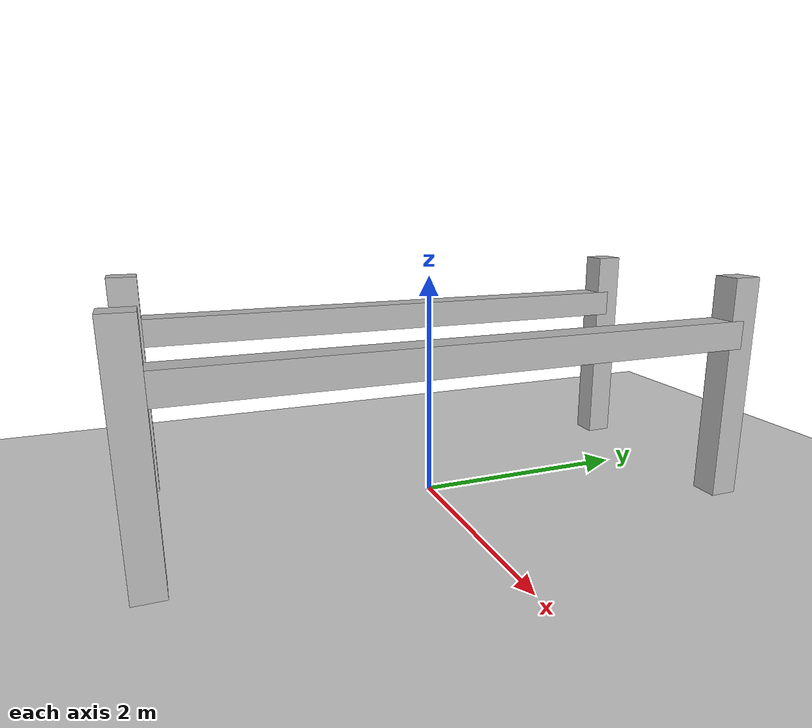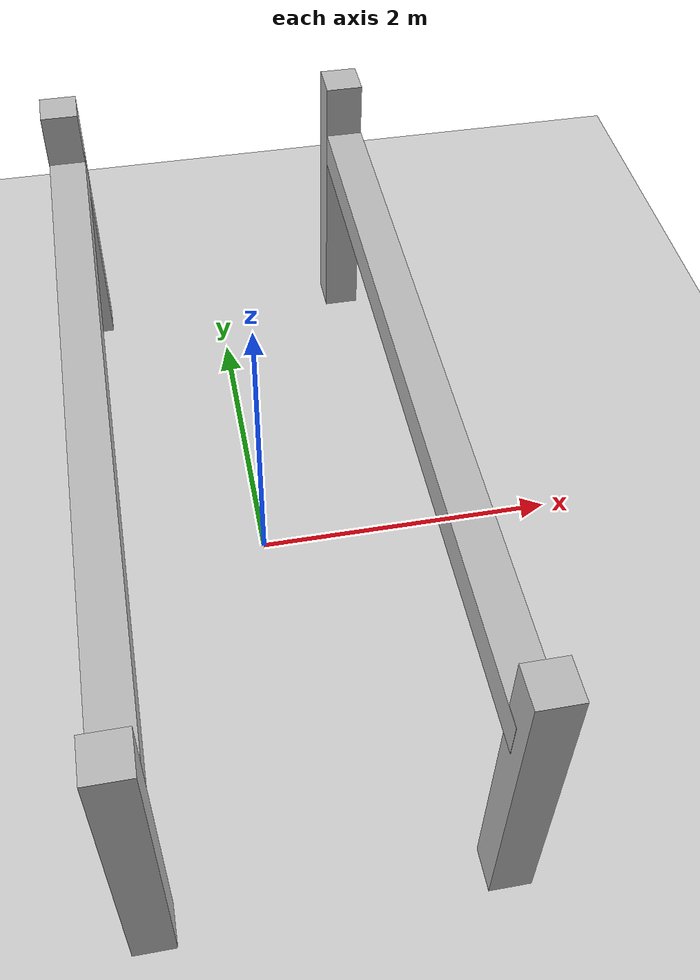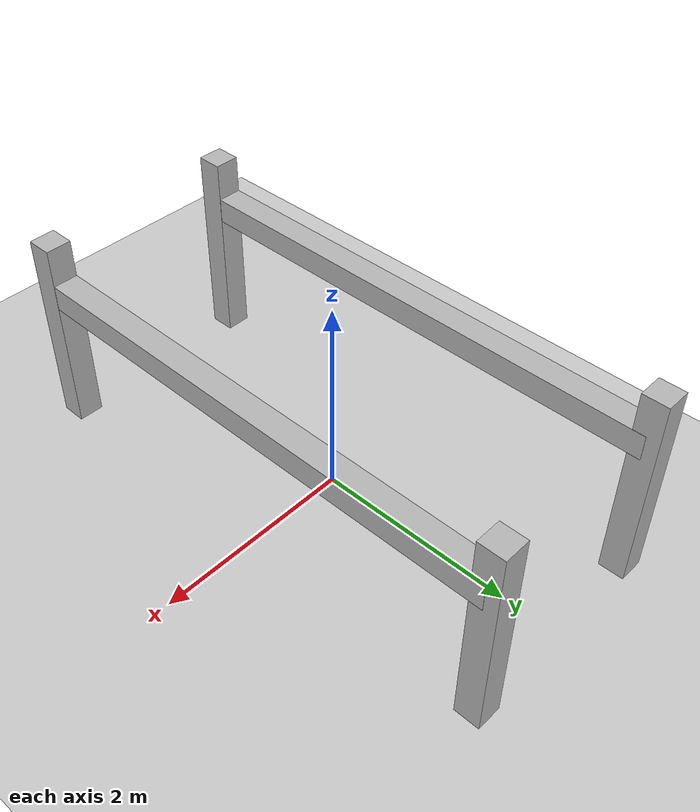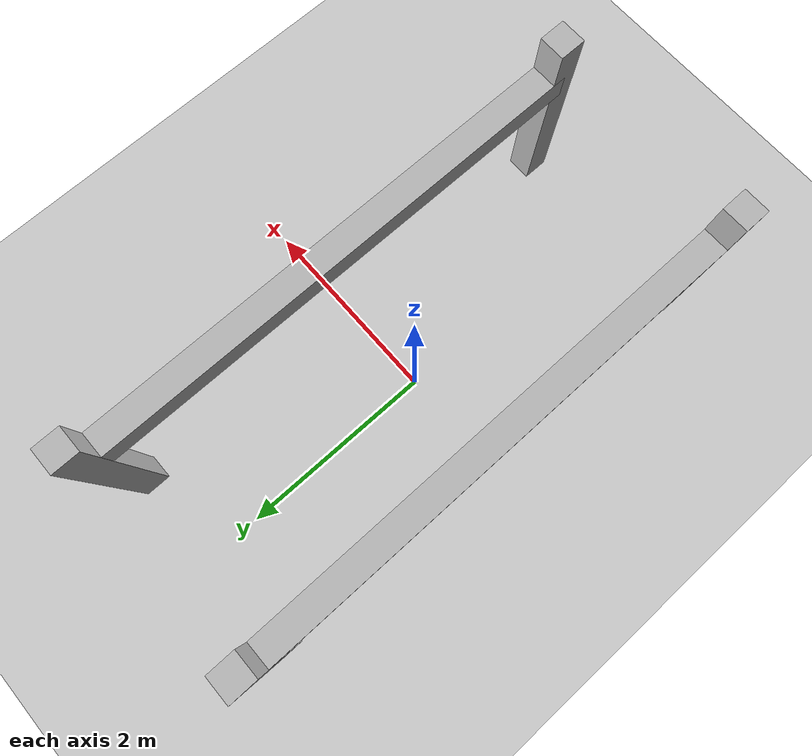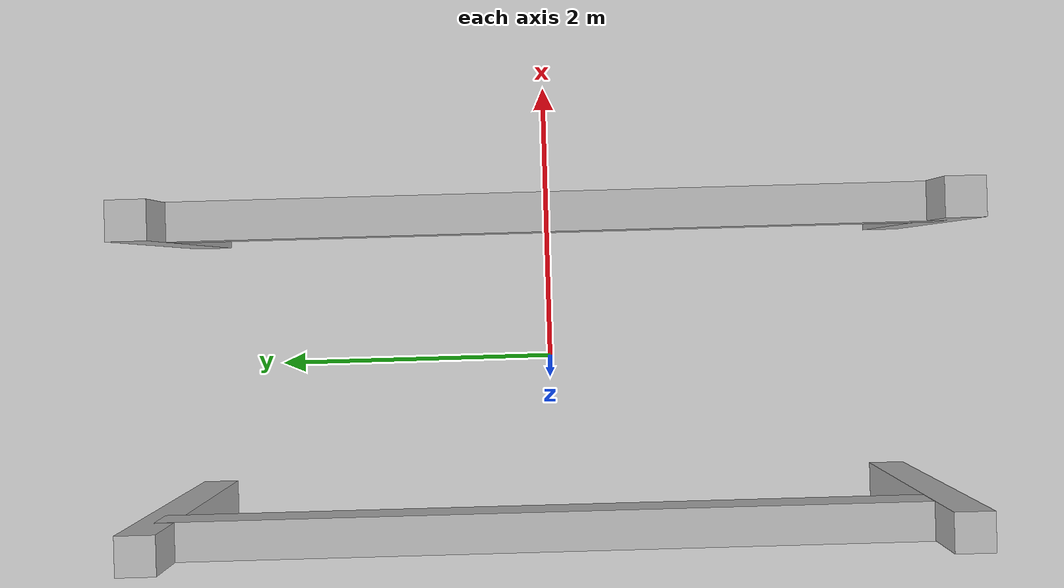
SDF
<?xml version="1.0" ?>

<sdf version='1.6'>
  <world name='default'>
    <light name='sun' type='directional'>
      <cast_shadows>1</cast_shadows>
      <pose frame=''>0 0 1 0 -0 0</pose>
      <diffuse>0.8 0.8 0.8 1</diffuse>
      <specular>0.2 0.2 0.2 1</specular>
      <attenuation>
        <range>1000</range>
        <constant>0.9</constant>
        <linear>0.01</linear>
        <quadratic>0.001</quadratic>
      </attenuation>
      <direction>-0.5 0.1 -0.9</direction>
    </light>

    <model name='ground_plane'>
      <static>1</static>
      <link name='link'>
        <collision name='collision'>
          <geometry>
            <plane>
              <normal>0 0 1</normal>
              <size>100 100</size>
            </plane>
          </geometry>
          <surface>
            <contact>
              <collide_bitmask>65535</collide_bitmask>
              <ode/>
            </contact>
            <friction>
              <ode>
                <mu>100</mu>
                <mu2>50</mu2>
              </ode>
              <torsional>
                <ode/>
              </torsional>
            </friction>
            <bounce/>
          </surface>
          <max_contacts>10</max_contacts>
        </collision>
        <visual name='visual'>
          <cast_shadows>0</cast_shadows>
          <geometry>
            <plane>
              <normal>0 0 1</normal>
              <size>100 100</size>
            </plane>
          </geometry>
          <material>
            <script>
              <uri>file://media/materials/scripts/gazebo.material</uri>
              <name>Gazebo/Grey</name>
            </script>
          </material>
        </visual>
        <self_collide>0</self_collide>
        <enable_wind>0</enable_wind>
        <kinematic>0</kinematic>
      </link>
    </model>

    <gravity>0 0 -9.8</gravity>
    <magnetic_field>6e-06 2.3e-05 -4.2e-05</magnetic_field>
    <atmosphere type='adiabatic'/>
    <physics name='default_physics' default='0' type='ode'>
      <max_step_size>0.002</max_step_size>
      <real_time_factor>1</real_time_factor>
      <real_time_update_rate>500</real_time_update_rate>
    </physics>
    <scene>
      <ambient>0.4 0.4 0.4 1</ambient>
      <background>0.7 0.7 0.7 1</background>
      <shadows>1</shadows>
    </scene>
    <spherical_coordinates>
      <surface_model>EARTH_WGS84</surface_model>
      <latitude_deg>0</latitude_deg>
      <longitude_deg>0</longitude_deg>
      <elevation>0</elevation>
      <heading_deg>0</heading_deg>
    </spherical_coordinates>

    <!-- Arc 'A' -->
    <model name='column_A_left'>
      <static>1</static>
      <pose>1 -2.5 1 0 0 0</pose>
      <link name='link'>
        <collision name='collision'>
          <geometry>
            <box>
              <size>0.25 0.25 2</size>
            </box>
          </geometry>
        </collision>
        <visual name='visual'>
          <geometry>
            <box>
              <size>0.25 0.25 2</size>
            </box>
          </geometry>
        </visual>
      </link>
    </model>

    <model name='column_A_right'>
      <static>1</static>
      <pose>1 2.5 1 0 0 0</pose>
      <link name='link'>
        <collision name='collision'>
          <geometry>
            <box>
              <size>0.25 0.25 2</size>
            </box>
          </geometry>
        </collision>
        <visual name='visual'>
          <geometry>
            <box>
              <size>0.25 0.25 2</size>
            </box>
          </geometry>
        </visual>
      </link>
    </model>

    <model name='column_A_up'>
      <static>1</static>
      <pose>1 0 1.5 0 0 1.57</pose>
      <link name='link'>
        <collision name='collision'>
          <geometry>
            <box>
              <size>5 0.25 0.25</size>
            </box>
          </geometry>
        </collision>
        <visual name='visual'>
          <geometry>
            <box>
              <size>5 0.25 0.25</size>
            </box>
          </geometry>
        </visual>
      </link>
    </model>

      <!-- Arc 'B' -->
    <model name='column_B_left'>
      <static>1</static>
      <pose>-1 -2.5 1 0 0 0</pose>
      <link name='link'>
        <collision name='collision'>
          <geometry>
            <box>
              <size>0.25 0.25 2</size>
            </box>
          </geometry>
        </collision>
        <visual name='visual'>
          <geometry>
            <box>
              <size>0.25 0.25 2</size>
            </box>
          </geometry>
        </visual>
      </link>
    </model>

    <model name='column_B_right'>
      <static>1</static>
      <pose>-1 2.5 1 0 0 0</pose>
      <link name='link'>
        <collision name='collision'>
          <geometry>
            <box>
              <size>0.25 0.25 2</size>
            </box>
          </geometry>
        </collision>
        <visual name='visual'>
          <geometry>
            <box>
              <size>0.25 0.25 2</size>
            </box>
          </geometry>
        </visual>
      </link>
    </model>

    <model name='column_B_up'>
      <static>1</static>
      <pose>-1 0 1.5 0 0 1.57</pose>
      <link name='link'>
        <collision name='collision'>
          <geometry>
            <box>
              <size>5 0.25 0.25</size>
            </box>
          </geometry>
        </collision>
        <visual name='visual'>
          <geometry>
            <box>
              <size>5 0.25 0.25</size>
            </box>
          </geometry>
        </visual>
      </link>
    </model>

    <plugin name='gazebo_octomap' filename='libBuildOctomapPlugin.so'/>
    <plugin name="ros_link_attacher_plugin" filename="libgazebo_ros_link_attacher_plugin.so"/>
    <plugin name="gazebo_ros_factory" filename="libgazebo_ros_factory.so"/>

  </world>
</sdf>
